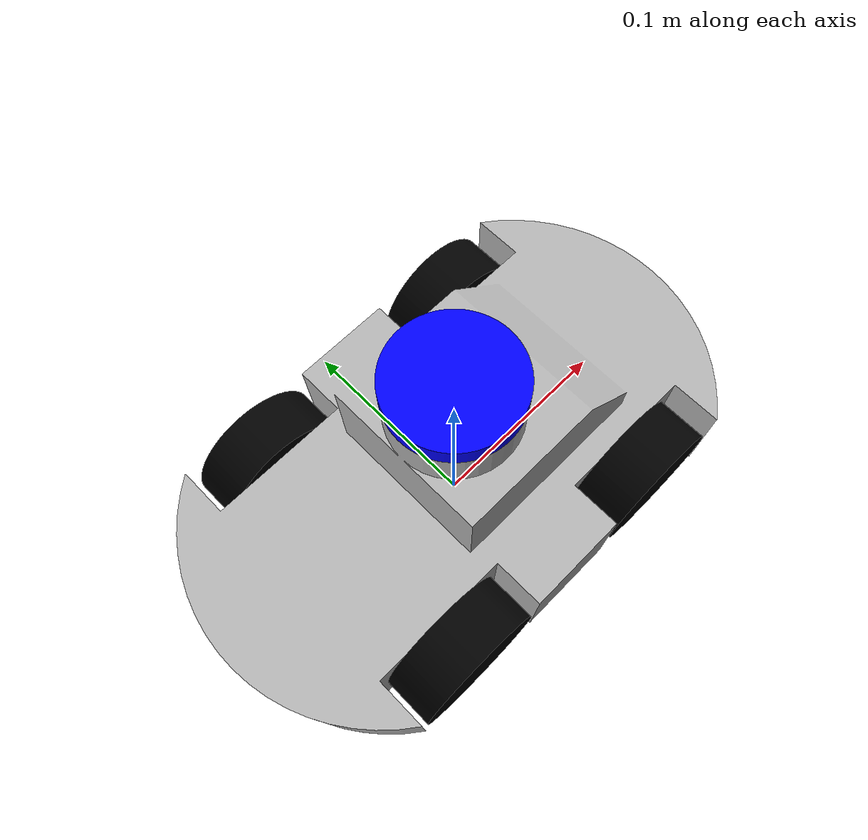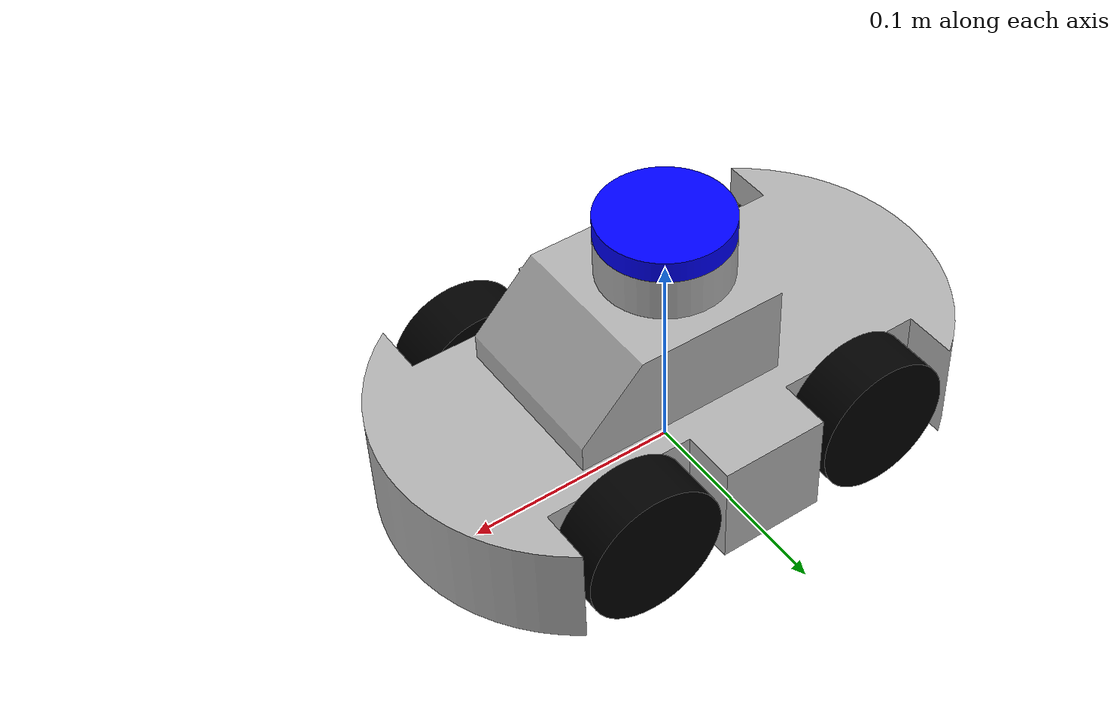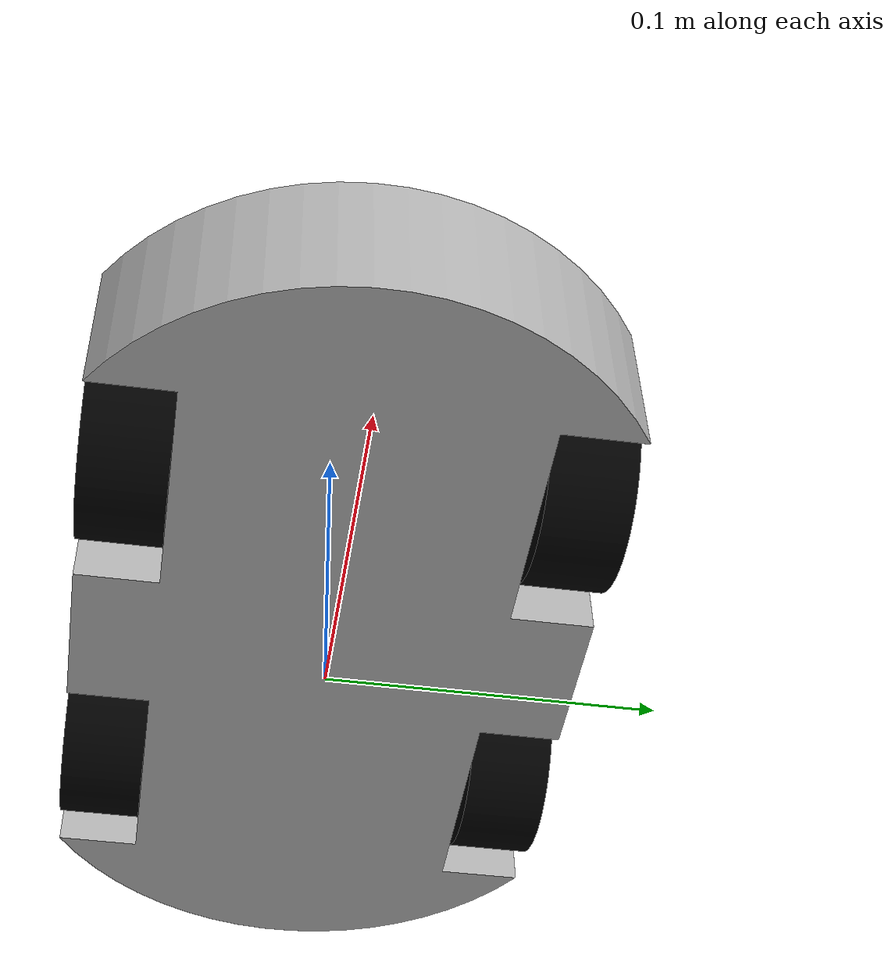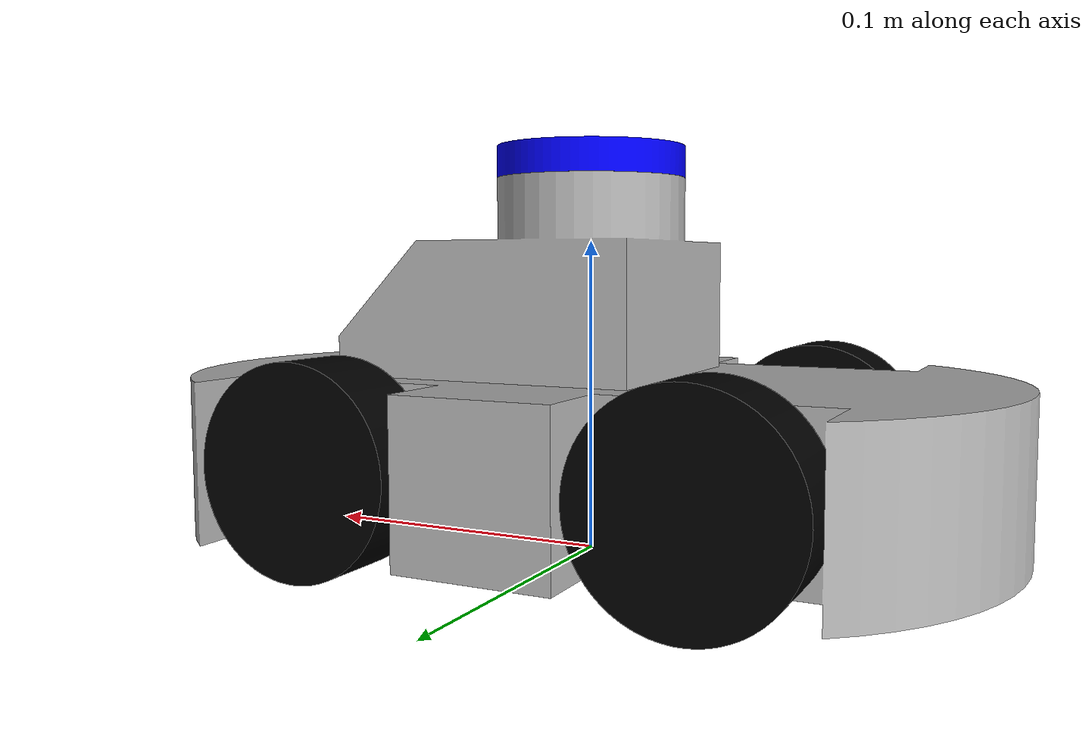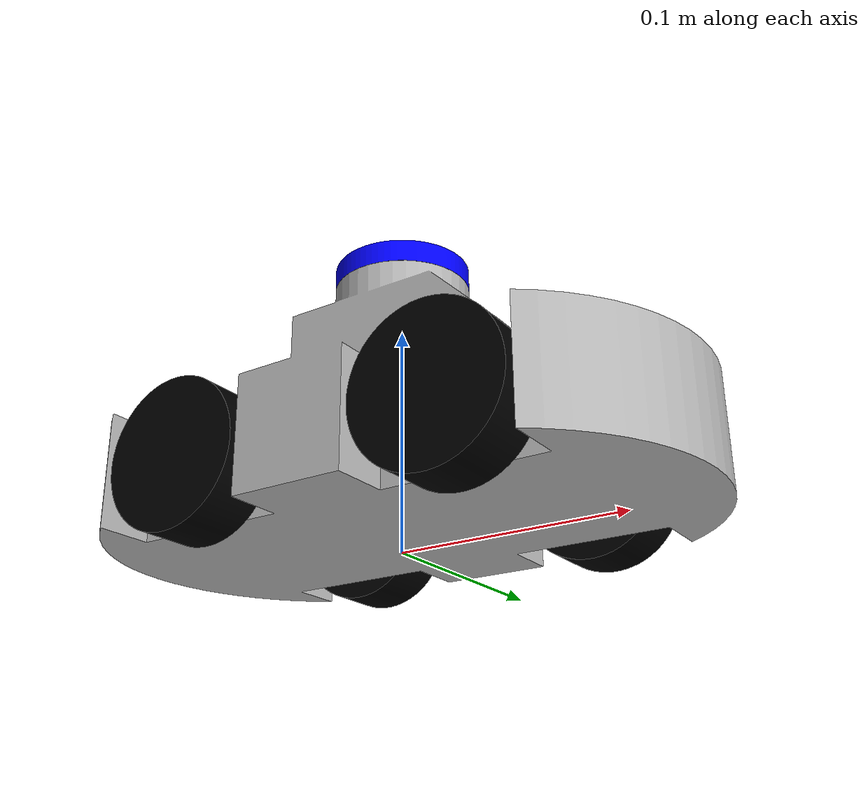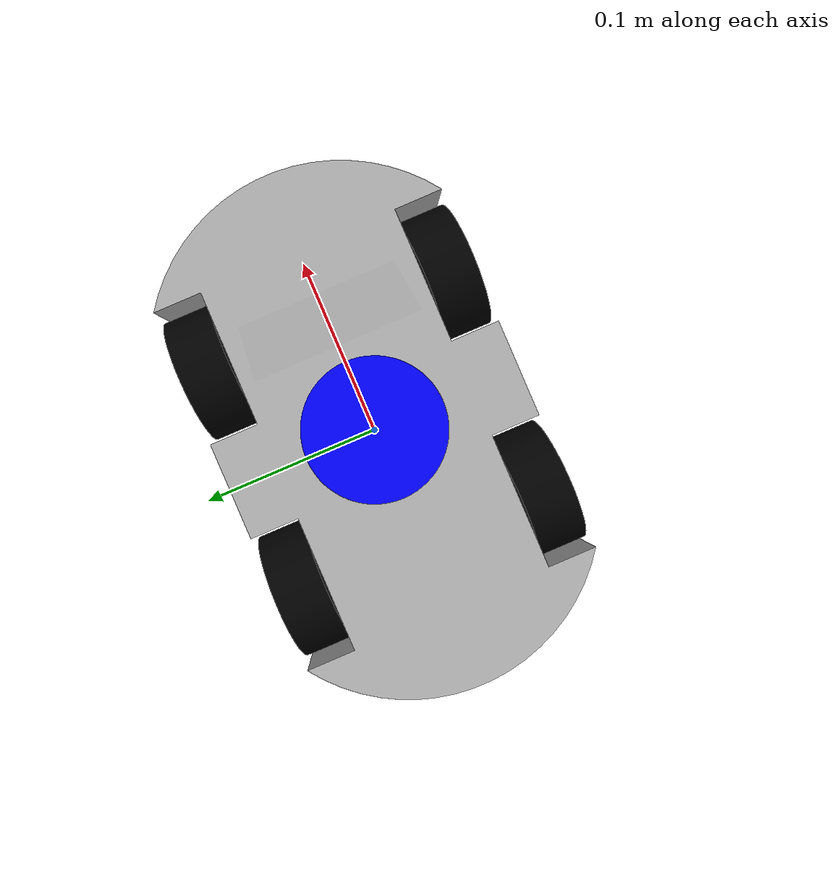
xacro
<?xml version="1.0" ?>
<robot name="aiscbot" xmlns:xacro="http://www.ros.org/wiki/xacro">

<xacro:include filename="$(find aiscbot_description)/urdf/materials.xacro" />
<xacro:include filename="$(find aiscbot_description)/urdf/aiscbot.gazebo" />

<link name="base_link">
  <inertial>
    <origin rpy="0 0 0" xyz="0.0012695575535276982 8.009942994763898e-17 0.04221838750051013"/>
    <mass value="0.6017922877288348"/>
    <inertia ixx="0.001551" ixy="0.0" ixz="-4.2e-05" iyy="0.003864" iyz="0.0" izz="0.004363"/>
  </inertial>
  <visual>
    <origin rpy="0 0 0" xyz="0 0 0"/>
    <geometry>
      <mesh filename="package://aiscbot_description/meshes/base_link.stl" scale="0.001 0.001 0.001"/>
    </geometry>
    <material name="silver"/>
  </visual>
  <collision>
    <origin rpy="0 0 0" xyz="0 0 0"/>
    <geometry>
      <mesh filename="package://aiscbot_description/meshes/base_link.stl" scale="0.001 0.001 0.001"/>
    </geometry>
  </collision>
</link>

<link name="wheel_rf_1">
  <inertial>
    <origin rpy="0 0 0" xyz="-4.85722573273506e-17 -0.01249999999999999 0.0"/>
    <mass value="0.098719640400538"/>
    <inertia ixx="3.1e-05" ixy="-0.0" ixz="0.0" iyy="5.2e-05" iyz="0.0" izz="3.1e-05"/>
  </inertial>
  <visual>
    <origin rpy="0 0 0" xyz="-0.06 0.0515 -0.0325"/>
    <geometry>
      <mesh filename="package://aiscbot_description/meshes/wheel_rf_1.stl" scale="0.001 0.001 0.001"/>
    </geometry>
    <material name="black"/>
  </visual>
  <collision>
    <origin rpy="0 0 0" xyz="-0.06 0.0515 -0.0325"/>
    <geometry>
      <mesh filename="package://aiscbot_description/meshes/wheel_rf_1.stl" scale="0.001 0.001 0.001"/>
    </geometry>
  </collision>
</link>

<link name="wheel_lf_1">
  <inertial>
    <origin rpy="0 0 0" xyz="-4.85722573273506e-17 0.01249999999999999 0.0"/>
    <mass value="0.098719640400538"/>
    <inertia ixx="3.1e-05" ixy="0.0" ixz="0.0" iyy="5.2e-05" iyz="-0.0" izz="3.1e-05"/>
  </inertial>
  <visual>
    <origin rpy="0 0 0" xyz="-0.06 -0.0515 -0.0325"/>
    <geometry>
      <mesh filename="package://aiscbot_description/meshes/wheel_lf_1.stl" scale="0.001 0.001 0.001"/>
    </geometry>
    <material name="black"/>
  </visual>
  <collision>
    <origin rpy="0 0 0" xyz="-0.06 -0.0515 -0.0325"/>
    <geometry>
      <mesh filename="package://aiscbot_description/meshes/wheel_lf_1.stl" scale="0.001 0.001 0.001"/>
    </geometry>
  </collision>
</link>

<link name="wheel_rb_1">
  <inertial>
    <origin rpy="0 0 0" xyz="0.0 -0.012500000000000004 3.469446951953614e-17"/>
    <mass value="0.09871964040053806"/>
    <inertia ixx="3.1e-05" ixy="0.0" ixz="-0.0" iyy="5.2e-05" iyz="-0.0" izz="3.1e-05"/>
  </inertial>
  <visual>
    <origin rpy="0 0 0" xyz="0.06 0.0515 -0.0325"/>
    <geometry>
      <mesh filename="package://aiscbot_description/meshes/wheel_rb_1.stl" scale="0.001 0.001 0.001"/>
    </geometry>
    <material name="black"/>
  </visual>
  <collision>
    <origin rpy="0 0 0" xyz="0.06 0.0515 -0.0325"/>
    <geometry>
      <mesh filename="package://aiscbot_description/meshes/wheel_rb_1.stl" scale="0.001 0.001 0.001"/>
    </geometry>
  </collision>
</link>

<link name="wheel_lb_1">
  <inertial>
    <origin rpy="0 0 0" xyz="0.0 0.012500000000000004 3.469446951953614e-17"/>
    <mass value="0.09871964040053806"/>
    <inertia ixx="3.1e-05" ixy="-0.0" ixz="-0.0" iyy="5.2e-05" iyz="0.0" izz="3.1e-05"/>
  </inertial>
  <visual>
    <origin rpy="0 0 0" xyz="0.06 -0.0515 -0.0325"/>
    <geometry>
      <mesh filename="package://aiscbot_description/meshes/wheel_lb_1.stl" scale="0.001 0.001 0.001"/>
    </geometry>
    <material name="black"/>
  </visual>
  <collision>
    <origin rpy="0 0 0" xyz="0.06 -0.0515 -0.0325"/>
    <geometry>
      <mesh filename="package://aiscbot_description/meshes/wheel_lb_1.stl" scale="0.001 0.001 0.001"/>
    </geometry>
  </collision>
</link>

<link name="lidar_1">
  <inertial>
    <origin rpy="0 0 0" xyz="1.0052123437711858e-17 0.0 0.005000000000000032"/>
    <mass value="0.029970793915246617"/>
    <inertia ixx="7e-06" ixy="0.0" ixz="-0.0" iyy="7e-06" iyz="-0.0" izz="1.3e-05"/>
  </inertial>
  <visual>
    <origin rpy="0 0 0" xyz="-0.0 -0.0 -0.12"/>
    <geometry>
      <mesh filename="package://aiscbot_description/meshes/lidar_1.stl" scale="0.001 0.001 0.001"/>
    </geometry>
    <material name="blue"/>
  </visual>
  <collision>
    <origin rpy="0 0 0" xyz="-0.0 -0.0 -0.12"/>
    <geometry>
      <mesh filename="package://aiscbot_description/meshes/lidar_1.stl" scale="0.001 0.001 0.001"/>
    </geometry>
  </collision>
</link>

<joint name="Rigid5" type="fixed">
  <origin rpy="0 0 0" xyz="0.0 0.0 0.12"/>
  <parent link="base_link"/>
  <child link="lidar_1"/>
</joint>

<joint name="Rev1" type="continuous">
  <origin rpy="0 0 0" xyz="0.06 -0.0515 0.0325"/>
  <parent link="base_link"/>
  <child link="wheel_rf_1"/>
  <axis xyz="0.0 1.0 0.0"/>
</joint>

<joint name="Rev2" type="continuous">
  <origin rpy="0 0 0" xyz="0.06 0.0515 0.0325"/>
  <parent link="base_link"/>
  <child link="wheel_lf_1"/>
  <axis xyz="0.0 1.0 0.0"/>
</joint>

<joint name="Rev3" type="continuous">
  <origin rpy="0 0 0" xyz="-0.06 -0.0515 0.0325"/>
  <parent link="base_link"/>
  <child link="wheel_rb_1"/>
  <axis xyz="0.0 1.0 0.0"/>
</joint>

<joint name="Rev4" type="continuous">
  <origin rpy="0 0 0" xyz="-0.06 0.0515 0.0325"/>
  <parent link="base_link"/>
  <child link="wheel_lb_1"/>
  <axis xyz="0.0 1.0 0.0"/>
</joint>

</robot>

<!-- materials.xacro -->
<robot name="aiscbot" xmlns:xacro="http://www.ros.org/wiki/xacro" >

<material name="silver">
  <color rgba="0.700 0.700 0.700 1.000"/>
</material>

<material name="black">
  <color rgba="0.000 0.000 0.000 1.000"/>
</material>

<material name="blue">
  <color rgba="0.000 0.000 1.000 1.000"/>
</material>

<material name="red">
  <color rgba="0.700 0.700 0.700 1.000"/>
</material>

</robot>

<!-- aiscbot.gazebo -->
<robot name="aiscbot" xmlns:xacro="http://www.ros.org/wiki/xacro" >

<xacro:property name="body_color" value="Gazebo/Silver" />
<xacro:property name="body_color_black" value="Gazebo/Black" />
<xacro:property name="body_color_blue" value="Gazebo/Blue" />
<xacro:property name="body_color_red" value="Gazebo/Red" />

<gazebo>
  <plugin filename="libgazebo_ros_control.so" name="gazebo_ros_control">
    <robotNamespace>/aiscbot</robotNamespace>
    <robotSimType>gazebo_ros_control/DefaultRobotHWSim</robotSimType>
    <legacyModeNS>true</legacyModeNS>
  </plugin>
</gazebo>

<gazebo reference="base_link">
  <material>${body_color_red}</material>
  <mu1>0.2</mu1>
  <mu2>0.2</mu2>
  <selfCollide>true</selfCollide>
  <gravity>true</gravity>
</gazebo>

<gazebo reference="wheel_rf_1">
  <material>${body_color_black}</material>
  <mu1>0.2</mu1>
  <mu2>0.2</mu2>
  <selfCollide>true</selfCollide>
</gazebo>

<gazebo reference="wheel_lf_1">
  <material>${body_color_black}</material>
  <mu1>0.2</mu1>
  <mu2>0.2</mu2>
  <selfCollide>true</selfCollide>
</gazebo>

<gazebo reference="wheel_rb_1">
  <material>${body_color_black}</material>
  <mu1>0.2</mu1>
  <mu2>0.2</mu2>
  <selfCollide>true</selfCollide>
</gazebo>

<gazebo reference="wheel_lb_1">
  <material>${body_color_black}</material>
  <mu1>0.2</mu1>
  <mu2>0.2</mu2>
  <selfCollide>true</selfCollide>
</gazebo>

<gazebo reference="lidar_1">
  <material>${body_color_blue}</material>
  <mu1>0.2</mu1>
  <mu2>0.2</mu2>
  <selfCollide>true</selfCollide>
</gazebo>

<gazebo reference="lidar_1">
    <sensor type="ray" name="ydlidar">
      <pose>0 0 0 0 0 0</pose>
      <visualize>false</visualize>
      <update_rate>10</update_rate>
      <ray>
        <scan>
          <horizontal>
            <samples>720</samples>
            <resolution>1</resolution>
            <min_angle>-3.14159</min_angle>
            <max_angle>3.14159</max_angle>
          </horizontal>
        </scan>
        <range>
          <min>0.10</min>
          <max>30.0</max>
          <resolution>0.01</resolution>
        </range>
        <noise>
          <type>gaussian</type>
          <mean>0.0</mean>
          <stddev>0.01</stddev>
        </noise>
      </ray>
      <plugin name="gazebo_ros_head_hokuyo_controller" filename="libgazebo_ros_laser.so">
        <topicName>/scan</topicName>
        <frameName>lidar_1</frameName>
      </plugin>
    </sensor>
</gazebo>

<gazebo>
  <plugin name="skid_steer_drive_controller" filename="libgazebo_ros_skid_steer_drive.so">
    <updateRate>100.0</updateRate>
    <robotNamespace>/</robotNamespace>
    <leftFrontJoint>Rev2</leftFrontJoint>
    <rightFrontJoint>Rev1</rightFrontJoint>
    <leftRearJoint>Rev4</leftRearJoint>
    <rightRearJoint>Rev3</rightRearJoint>
    <wheelSeparation>0.4</wheelSeparation>
    <wheelDiameter>0.215</wheelDiameter>
    <robotBaseFrame>base_link</robotBaseFrame>
    <torque>20</torque>
    <topicName>cmd_vel</topicName>
    <broadcastTF>true</broadcastTF>
  </plugin>
</gazebo>

</robot>
